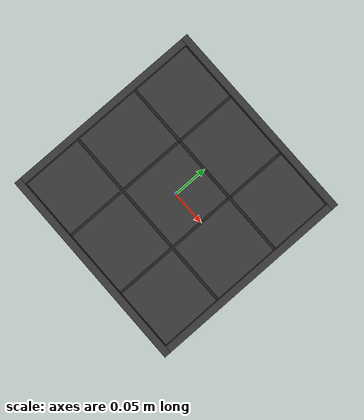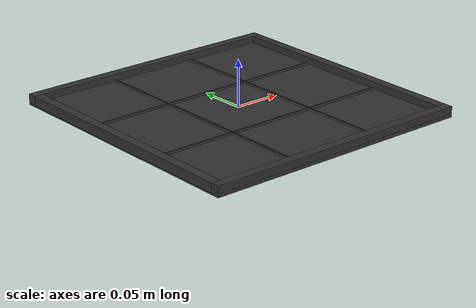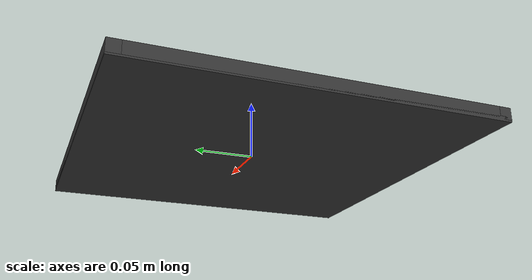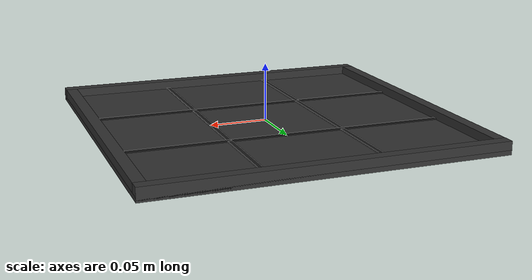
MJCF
<mujoco model="external_frame_tic_tac_toe">
  <asset>
    <texture name="tex_frame" type="2d" builtin="flat" rgb1="0.2 0.2 0.2" width="512" height="512"/>
    <material name="mat_frame" texture="tex_frame" shininess="0.1" specular="0.1"/>
    <material name="mat_grid" texture="tex_frame" rgba="0.5 0.5 0.5 1"/>
  </asset>
  <worldbody>
   <body>
    <body name="object">
      <inertial pos="0 0 0" mass="100" diaginertia="1 1 1" />

      <geom name="wall_back" type="box" size="0.15 0.005 0.005" pos="0 0.145 0.0025" material="mat_frame" group="1" density="10000"/>
      <geom name="wall_front" type="box" size="0.15 0.005 0.005" pos="0 -0.145 0.0025" material="mat_frame" group="1" density="10000"/>
      <geom name="wall_left" type="box" size="0.005 0.14 0.005" pos="-0.145 0 0.0025" material="mat_frame" group="1" density="10000"/>
      <geom name="wall_right" type="box" size="0.005 0.14 0.005" pos="0.145 0 0.0025" material="mat_frame" group="1" density="10000"/>

      <geom name="frame_base" type="box" size="0.15 0.15 0.002" pos="0 0 -0.002" material="mat_frame" group="1" density="10000"/>

      <geom name="grid_v1" type="box" size="0.002 0.145 0.0011" pos="-0.05 0 0" material="mat_grid" group="1" conaffinity="0" contype="0"/>
      <geom name="grid_v2" type="box" size="0.002 0.145 0.0011" pos="0.05 0 0" material="mat_grid" group="1" conaffinity="0" contype="0"/>
      <geom name="grid_h1" type="box" size="0.145 0.002 0.0011" pos="0 -0.05 0" material="mat_grid" group="1" conaffinity="0" contype="0"/>
      <geom name="grid_h2" type="box" size="0.145 0.002 0.0011" pos="0 0.05 0" material="mat_grid" group="1" conaffinity="0" contype="0"/>

      <site name="bottom_site" pos="0 0 0" size="0.002" rgba="0 0 0 0"/>
    </body>
   </body>
  </worldbody>
</mujoco>
